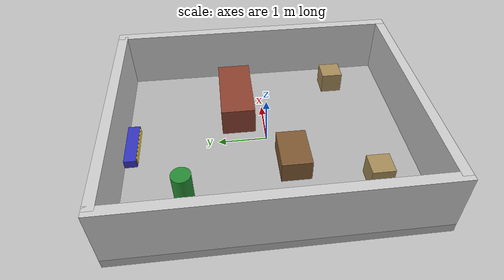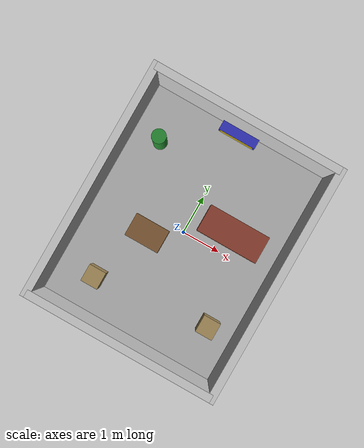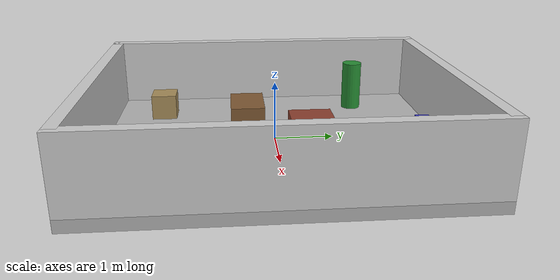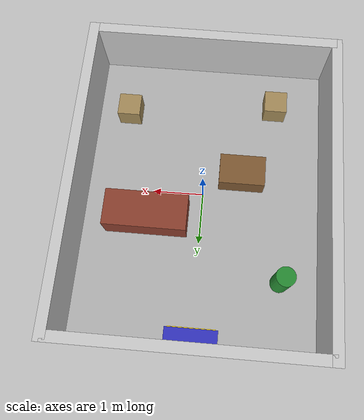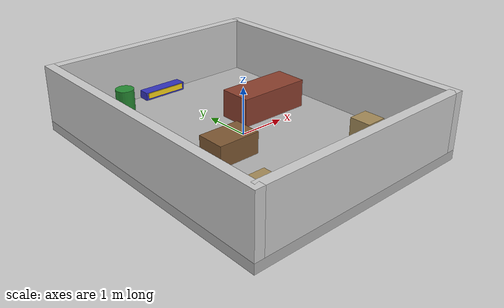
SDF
<?xml version="1.0" ?>
<sdf version="1.9">
  <world name="house_room">
    <gravity>0 0 -9.8</gravity>

    <physics name="default_physics" default="true" type="dart">
      <max_step_size>0.001</max_step_size>
      <real_time_factor>1.0</real_time_factor>
    </physics>

    <!-- System plugins — must be declared explicitly (like the house world);
         without them the sensors system never loads and IMU/lidar stay silent -->
    <plugin filename="gz-sim-physics-system" name="gz::sim::systems::Physics"/>
    <plugin filename="gz-sim-user-commands-system" name="gz::sim::systems::UserCommands"/>
    <plugin filename="gz-sim-scene-broadcaster-system" name="gz::sim::systems::SceneBroadcaster"/>
    <plugin filename="gz-sim-sensors-system" name="gz::sim::systems::Sensors">
      <render_engine>ogre2</render_engine>
    </plugin>
    <plugin filename="gz-sim-imu-system" name="gz::sim::systems::Imu"/>

    <scene>
      <ambient>0.5 0.5 0.5</ambient>
      <background>0.6 0.6 0.6</background>
      <shadows>0</shadows>
    </scene>

    <light name="sun" type="directional">
      <pose>0 0 3 0 0 0</pose>
      <diffuse>1 1 1 1</diffuse>
      <specular>0.1 0.1 0.1 1</specular>
      <direction>-0.5 0.1 -0.9</direction>
    </light>

    <!-- Floor: 5.05 x 6.15 m slab, top surface at z=0 -->
    <model name="floor">
      <static>true</static>
      <link name="floor_link">
        <collision name="floor_collision">
          <geometry>
            <box>
              <size>5.05 6.15 0.2</size>
            </box>
          </geometry>
          <surface>
            <friction>
              <ode>
                <mu>1.0</mu>
                <mu2>1.0</mu2>
              </ode>
            </friction>
          </surface>
        </collision>
        <visual name="floor_visual">
          <geometry>
            <box>
              <size>5.05 6.15 0.2</size>
            </box>
          </geometry>
          <material>
            <ambient>0.7 0.7 0.7 1</ambient>
            <diffuse>0.7 0.7 0.7 1</diffuse>
            <specular>0.05 0.05 0.05 1</specular>
          </material>
        </visual>
      </link>
      <pose>0 0 -0.1 0 0 0</pose>
    </model>

    <!-- Walls: 0.2 m thick, 1.2 m high, interior 4.65 x 5.75 m -->
    <!-- North wall (y=+2.875) -->
    <model name="wall_north">
      <static>true</static>
      <link name="link">
        <collision name="collision">
          <geometry><box><size>4.85 0.2 1.2</size></box></geometry>
        </collision>
        <visual name="visual">
          <geometry><box><size>4.85 0.2 1.2</size></box></geometry>
          <material>
            <ambient>0.8 0.8 0.8 1</ambient>
            <diffuse>0.8 0.8 0.8 1</diffuse>
          </material>
        </visual>
      </link>
      <pose>0 2.975 0.6 0 0 0</pose>
    </model>

    <!-- South wall (y=-2.875) -->
    <model name="wall_south">
      <static>true</static>
      <link name="link">
        <collision name="collision">
          <geometry><box><size>4.85 0.2 1.2</size></box></geometry>
        </collision>
        <visual name="visual">
          <geometry><box><size>4.85 0.2 1.2</size></box></geometry>
          <material>
            <ambient>0.8 0.8 0.8 1</ambient>
            <diffuse>0.8 0.8 0.8 1</diffuse>
          </material>
        </visual>
      </link>
      <pose>0 -2.975 0.6 0 0 0</pose>
    </model>

    <!-- East wall (x=+2.325) -->
    <model name="wall_east">
      <static>true</static>
      <link name="link">
        <collision name="collision">
          <geometry><box><size>0.2 6.15 1.2</size></box></geometry>
        </collision>
        <visual name="visual">
          <geometry><box><size>0.2 6.15 1.2</size></box></geometry>
          <material>
            <ambient>0.8 0.8 0.8 1</ambient>
            <diffuse>0.8 0.8 0.8 1</diffuse>
          </material>
        </visual>
      </link>
      <pose>2.425 0 0.6 0 0 0</pose>
    </model>

    <!-- West wall (x=-2.325) -->
    <model name="wall_west">
      <static>true</static>
      <link name="link">
        <collision name="collision">
          <geometry><box><size>0.2 6.15 1.2</size></box></geometry>
        </collision>
        <visual name="visual">
          <geometry><box><size>0.2 6.15 1.2</size></box></geometry>
          <material>
            <ambient>0.8 0.8 0.8 1</ambient>
            <diffuse>0.8 0.8 0.8 1</diffuse>
          </material>
        </visual>
      </link>
      <pose>-2.425 0 0.6 0 0 0</pose>
    </model>

    <!-- ============ Furniture obstacles (flavor) ============ -->

    <!-- Sofa: 1.6 x 0.7 x 0.6, east-center -->
    <model name="sofa">
      <static>true</static>
      <link name="link">
        <collision name="collision">
          <geometry><box><size>1.6 0.7 0.6</size></box></geometry>
        </collision>
        <visual name="visual">
          <geometry><box><size>1.6 0.7 0.6</size></box></geometry>
          <material>
            <ambient>0.45 0.2 0.15 1</ambient>
            <diffuse>0.55 0.25 0.18 1</diffuse>
          </material>
        </visual>
      </link>
      <pose>1.05 0.55 0.3 0 0 0</pose>
    </model>

    <!-- Coffee table: 0.9 x 0.6 x 0.45, west-center -->
    <model name="coffee_table">
      <static>true</static>
      <link name="link">
        <collision name="collision">
          <geometry><box><size>0.9 0.6 0.45</size></box></geometry>
        </collision>
        <visual name="visual">
          <geometry><box><size>0.9 0.6 0.45</size></box></geometry>
          <material>
            <ambient>0.4 0.28 0.15 1</ambient>
            <diffuse>0.5 0.35 0.2 1</diffuse>
          </material>
        </visual>
      </link>
      <pose>-0.75 -0.45 0.225 0 0 0</pose>
    </model>

    <!-- Potted plant: cylinder r=0.18, h=0.9, NW corner -->
    <model name="plant">
      <static>true</static>
      <link name="link">
        <collision name="collision">
          <geometry><cylinder><radius>0.18</radius><length>0.9</length></cylinder></geometry>
        </collision>
        <visual name="visual">
          <geometry><cylinder><radius>0.18</radius><length>0.9</length></cylinder></geometry>
          <material>
            <ambient>0.1 0.45 0.15 1</ambient>
            <diffuse>0.15 0.55 0.2 1</diffuse>
          </material>
        </visual>
      </link>
      <pose>-1.6 1.65 0.45 0 0 0</pose>
    </model>

    <!-- Crate A: 0.45 cube, SE area -->
    <model name="crate_a">
      <static>true</static>
      <link name="link">
        <collision name="collision">
          <geometry><box><size>0.45 0.45 0.45</size></box></geometry>
        </collision>
        <visual name="visual">
          <geometry><box><size>0.45 0.45 0.45</size></box></geometry>
          <material>
            <ambient>0.55 0.45 0.3 1</ambient>
            <diffuse>0.65 0.55 0.35 1</diffuse>
          </material>
        </visual>
      </link>
      <pose>1.65 -1.7 0.225 0 0 0</pose>
    </model>

    <!-- Crate B: 0.45 cube, SW area -->
    <model name="crate_b">
      <static>true</static>
      <link name="link">
        <collision name="collision">
          <geometry><box><size>0.45 0.45 0.45</size></box></geometry>
        </collision>
        <visual name="visual">
          <geometry><box><size>0.45 0.45 0.45</size></box></geometry>
          <material>
            <ambient>0.55 0.45 0.3 1</ambient>
            <diffuse>0.65 0.55 0.35 1</diffuse>
          </material>
        </visual>
      </link>
      <pose>-1.35 -2.0 0.225 0 0 0</pose>
    </model>

    <!-- ============ Charging dock (north wall) ============ -->
    <model name="charging_dock">
      <static>true</static>
      <link name="dock_link">
        <collision name="dock_collision">
          <geometry><box><size>1.0 0.25 0.35</size></box></geometry>
        </collision>
        <visual name="dock_visual">
          <geometry><box><size>1.0 0.25 0.35</size></box></geometry>
          <material>
            <ambient>0.15 0.15 0.55 1</ambient>
            <diffuse>0.2 0.2 0.75 1</diffuse>
          </material>
        </visual>
        <visual name="strip_visual">
          <pose>0 -0.13 0.1 0 0 0</pose>
          <geometry><box><size>0.9 0.02 0.12</size></box></geometry>
          <material>
            <ambient>1 0.8 0.1 1</ambient>
            <diffuse>1 0.85 0.1 1</diffuse>
            <emissive>1 0.8 0.1 1</emissive>
          </material>
        </visual>
      </link>
      <pose>0 2.75 0.0 0 0 0</pose>
    </model>

  </world>
</sdf>
